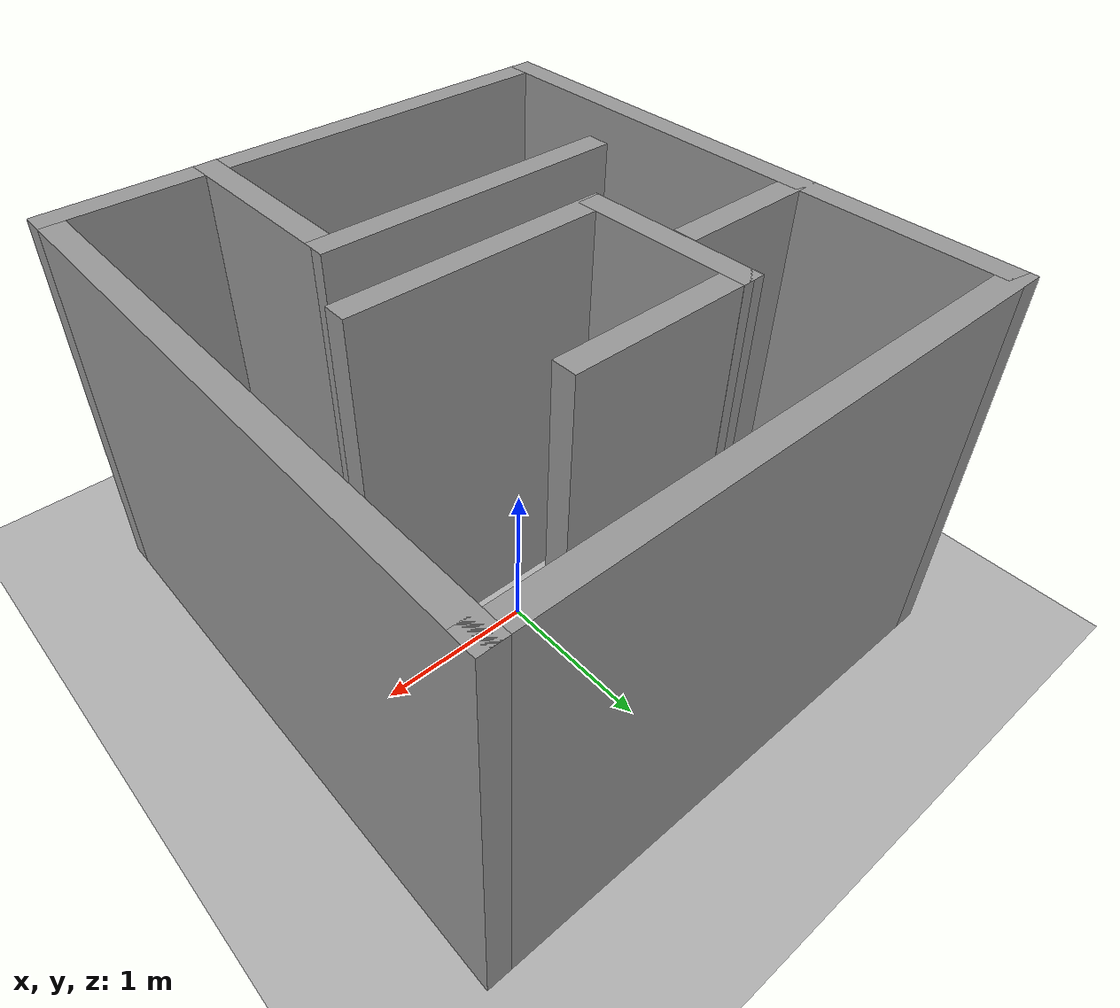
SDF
<sdf version='1.9'>
  <world name='default'>
    <gravity>0 0 -9.8</gravity>
    <magnetic_field>6e-06 2.3e-05 -4.2e-05</magnetic_field>
    <atmosphere type='adiabatic'/>
    <physics type='ode'>
      <max_step_size>0.001</max_step_size>
      <real_time_factor>1</real_time_factor>
      <real_time_update_rate>1000</real_time_update_rate>
    </physics>
    <scene>
      <ambient>0.4 0.4 0.4 1</ambient>
      <background>0.7 0.7 0.7 1</background>
      <shadows>true</shadows>
    </scene>
    <model name='maze'>
      <pose>-0.135324 -0.231144 0 0 -0 0</pose>
      <link name='Wall_0'>
        <collision name='Wall_0_Collision'>
          <geometry>
            <box>
              <size>3.5 0.15 2.5</size>
            </box>
          </geometry>
          <pose>0 0 1.25 0 -0 0</pose>
          <surface>
            <friction>
              <ode/>
            </friction>
            <bounce/>
            <contact/>
          </surface>
        </collision>
        <visual name='Wall_0_Visual'>
          <pose>0 0 1.25 0 -0 0</pose>
          <geometry>
            <box>
              <size>3.5 0.15 2.5</size>
            </box>
          </geometry>
          <material>
            <script>
              <uri>file://media/materials/scripts/gazebo.material</uri>
              <name>Gazebo/Grey</name>
            </script>
            <ambient>1 1 1 1</ambient>
          </material>
          <meta>
            <layer>0</layer>
          </meta>
        </visual>
        <pose>0 1.8011 0 0 -0 0</pose>
        <inertial>
          <pose>0 0 0 0 -0 0</pose>
          <mass>1</mass>
          <inertia>
            <ixx>1</ixx>
            <ixy>0</ixy>
            <ixz>0</ixz>
            <iyy>1</iyy>
            <iyz>0</iyz>
            <izz>1</izz>
          </inertia>
        </inertial>
        <enable_wind>false</enable_wind>
      </link>
      <link name='Wall_1'>
        <collision name='Wall_1_Collision'>
          <geometry>
            <box>
              <size>3.75 0.15 2.5</size>
            </box>
          </geometry>
          <pose>0 0 1.25 0 -0 0</pose>
          <surface>
            <friction>
              <ode/>
            </friction>
            <bounce/>
            <contact/>
          </surface>
        </collision>
        <visual name='Wall_1_Visual'>
          <pose>0 0 1.25 0 -0 0</pose>
          <geometry>
            <box>
              <size>3.75 0.15 2.5</size>
            </box>
          </geometry>
          <material>
            <script>
              <uri>file://media/materials/scripts/gazebo.material</uri>
              <name>Gazebo/Grey</name>
            </script>
            <ambient>1 1 1 1</ambient>
          </material>
          <meta>
            <layer>0</layer>
          </meta>
        </visual>
        <pose>1.675 0.001104 0 0 0 -1.5708</pose>
        <inertial>
          <pose>0 0 0 0 -0 0</pose>
          <mass>1</mass>
          <inertia>
            <ixx>1</ixx>
            <ixy>0</ixy>
            <ixz>0</ixz>
            <iyy>1</iyy>
            <iyz>0</iyz>
            <izz>1</izz>
          </inertia>
        </inertial>
        <enable_wind>false</enable_wind>
      </link>
      <link name='Wall_10'>
        <collision name='Wall_10_Collision'>
          <geometry>
            <box>
              <size>1.12773 0.15 2.5</size>
            </box>
          </geometry>
          <pose>0 0 1.25 0 -0 0</pose>
          <surface>
            <friction>
              <ode/>
            </friction>
            <bounce/>
            <contact/>
          </surface>
        </collision>
        <visual name='Wall_10_Visual'>
          <pose>0 0 1.25 0 -0 0</pose>
          <geometry>
            <box>
              <size>1.12773 0.15 2.5</size>
            </box>
          </geometry>
          <material>
            <script>
              <uri>file://media/materials/scripts/gazebo.material</uri>
              <name>Gazebo/Grey</name>
            </script>
            <ambient>1 1 1 1</ambient>
          </material>
          <meta>
            <layer>0</layer>
          </meta>
        </visual>
        <pose>-0.669321 0.437816 0 0 0 -1.55291</pose>
        <inertial>
          <pose>0 0 0 0 -0 0</pose>
          <mass>1</mass>
          <inertia>
            <ixx>1</ixx>
            <ixy>0</ixy>
            <ixz>0</ixz>
            <iyy>1</iyy>
            <iyz>0</iyz>
            <izz>1</izz>
          </inertia>
        </inertial>
        <enable_wind>false</enable_wind>
      </link>
      <link name='Wall_11'>
        <collision name='Wall_11_Collision'>
          <geometry>
            <box>
              <size>1.75 0.15 2.5</size>
            </box>
          </geometry>
          <pose>0 0 1.25 0 -0 0</pose>
          <surface>
            <friction>
              <ode/>
            </friction>
            <bounce/>
            <contact/>
          </surface>
        </collision>
        <visual name='Wall_11_Visual'>
          <pose>0 0 1.25 0 -0 0</pose>
          <geometry>
            <box>
              <size>1.75 0.15 2.5</size>
            </box>
          </geometry>
          <material>
            <script>
              <uri>file://media/materials/scripts/gazebo.material</uri>
              <name>Gazebo/Grey</name>
            </script>
            <ambient>1 1 1 1</ambient>
          </material>
          <meta>
            <layer>0</layer>
          </meta>
        </visual>
        <pose>0.139424 -0.068459 0 0 -0 0</pose>
        <inertial>
          <pose>0 0 0 0 -0 0</pose>
          <mass>1</mass>
          <inertia>
            <ixx>1</ixx>
            <ixy>0</ixy>
            <ixz>0</ixz>
            <iyy>1</iyy>
            <iyz>0</iyz>
            <izz>1</izz>
          </inertia>
        </inertial>
        <enable_wind>false</enable_wind>
      </link>
      <link name='Wall_13'>
        <collision name='Wall_13_Collision'>
          <geometry>
            <box>
              <size>1.25 0.15 2.5</size>
            </box>
          </geometry>
          <pose>0 0 1.25 0 -0 0</pose>
          <surface>
            <friction>
              <ode/>
            </friction>
            <bounce/>
            <contact/>
          </surface>
        </collision>
        <visual name='Wall_13_Visual'>
          <pose>0 0 1.25 0 -0 0</pose>
          <geometry>
            <box>
              <size>1.25 0.15 2.5</size>
            </box>
          </geometry>
          <material>
            <script>
              <uri>file://media/materials/scripts/gazebo.material</uri>
              <name>Gazebo/Grey</name>
            </script>
            <ambient>1 1 1 1</ambient>
          </material>
          <meta>
            <layer>0</layer>
          </meta>
        </visual>
        <pose>-0.128066 0.926601 0 0 -0 0</pose>
        <inertial>
          <pose>0 0 0 0 -0 0</pose>
          <mass>1</mass>
          <inertia>
            <ixx>1</ixx>
            <ixy>0</ixy>
            <ixz>0</ixz>
            <iyy>1</iyy>
            <iyz>0</iyz>
            <izz>1</izz>
          </inertia>
        </inertial>
        <enable_wind>false</enable_wind>
      </link>
      <link name='Wall_2'>
        <collision name='Wall_2_Collision'>
          <geometry>
            <box>
              <size>3.5 0.15 2.5</size>
            </box>
          </geometry>
          <pose>0 0 1.25 0 -0 0</pose>
          <surface>
            <friction>
              <ode/>
            </friction>
            <bounce/>
            <contact/>
          </surface>
        </collision>
        <visual name='Wall_2_Visual'>
          <pose>0 0 1.25 0 -0 0</pose>
          <geometry>
            <box>
              <size>3.5 0.15 2.5</size>
            </box>
          </geometry>
          <material>
            <script>
              <uri>file://media/materials/scripts/gazebo.material</uri>
              <name>Gazebo/Grey</name>
            </script>
            <ambient>1 1 1 1</ambient>
          </material>
          <meta>
            <layer>0</layer>
          </meta>
        </visual>
        <pose>0 -1.7989 0 0 -0 3.14159</pose>
        <inertial>
          <pose>0 0 0 0 -0 0</pose>
          <mass>1</mass>
          <inertia>
            <ixx>1</ixx>
            <ixy>0</ixy>
            <ixz>0</ixz>
            <iyy>1</iyy>
            <iyz>0</iyz>
            <izz>1</izz>
          </inertia>
        </inertial>
        <enable_wind>false</enable_wind>
      </link>
      <link name='Wall_3'>
        <collision name='Wall_3_Collision'>
          <geometry>
            <box>
              <size>3.75 0.15 2.5</size>
            </box>
          </geometry>
          <pose>0 0 1.25 0 -0 0</pose>
          <surface>
            <friction>
              <ode/>
            </friction>
            <bounce/>
            <contact/>
          </surface>
        </collision>
        <visual name='Wall_3_Visual'>
          <pose>0 0 1.25 0 -0 0</pose>
          <geometry>
            <box>
              <size>3.75 0.15 2.5</size>
            </box>
          </geometry>
          <material>
            <script>
              <uri>file://media/materials/scripts/gazebo.material</uri>
              <name>Gazebo/Grey</name>
            </script>
            <ambient>1 1 1 1</ambient>
          </material>
          <meta>
            <layer>0</layer>
          </meta>
        </visual>
        <pose>-1.675 0.001104 0 0 -0 1.5708</pose>
        <inertial>
          <pose>0 0 0 0 -0 0</pose>
          <mass>1</mass>
          <inertia>
            <ixx>1</ixx>
            <ixy>0</ixy>
            <ixz>0</ixz>
            <iyy>1</iyy>
            <iyz>0</iyz>
            <izz>1</izz>
          </inertia>
        </inertial>
        <enable_wind>false</enable_wind>
      </link>
      <link name='Wall_5'>
        <collision name='Wall_5_Collision'>
          <geometry>
            <box>
              <size>2 0.15 2.5</size>
            </box>
          </geometry>
          <pose>0 0 1.25 0 -0 0</pose>
          <surface>
            <friction>
              <ode/>
            </friction>
            <bounce/>
            <contact/>
          </surface>
        </collision>
        <visual name='Wall_5_Visual'>
          <pose>0 0 1.25 0 -0 0</pose>
          <geometry>
            <box>
              <size>2 0.15 2.5</size>
            </box>
          </geometry>
          <material>
            <script>
              <uri>file://media/materials/scripts/gazebo.material</uri>
              <name>Gazebo/Grey</name>
            </script>
            <ambient>1 1 1 1</ambient>
          </material>
          <meta>
            <layer>0</layer>
          </meta>
        </visual>
        <pose>-0.225298 -0.630015 0 0 -0 0</pose>
        <inertial>
          <pose>0 0 0 0 -0 0</pose>
          <mass>1</mass>
          <inertia>
            <ixx>1</ixx>
            <ixy>0</ixy>
            <ixz>0</ixz>
            <iyy>1</iyy>
            <iyz>0</iyz>
            <izz>1</izz>
          </inertia>
        </inertial>
        <enable_wind>false</enable_wind>
      </link>
      <link name='Wall_6'>
        <collision name='Wall_6_Collision'>
          <geometry>
            <box>
              <size>1.3026 0.15 2.5</size>
            </box>
          </geometry>
          <pose>0 0 1.25 0 -0 0</pose>
          <surface>
            <friction>
              <ode/>
            </friction>
            <bounce/>
            <contact/>
          </surface>
        </collision>
        <visual name='Wall_6_Visual'>
          <pose>0 0 1.25 0 -0 0</pose>
          <geometry>
            <box>
              <size>1.3026 0.15 2.5</size>
            </box>
          </geometry>
          <material>
            <script>
              <uri>file://media/materials/scripts/gazebo.material</uri>
              <name>Gazebo/Grey</name>
            </script>
            <ambient>1 1 1 1</ambient>
          </material>
          <meta>
            <layer>0</layer>
          </meta>
        </visual>
        <pose>0.708447 -1.22374 0 0 0 -1.55562</pose>
        <inertial>
          <pose>0 0 0 0 -0 0</pose>
          <mass>1</mass>
          <inertia>
            <ixx>1</ixx>
            <ixy>0</ixy>
            <ixz>0</ixz>
            <iyy>1</iyy>
            <iyz>0</iyz>
            <izz>1</izz>
          </inertia>
        </inertial>
        <enable_wind>false</enable_wind>
      </link>
      <link name='Wall_8'>
        <collision name='Wall_8_Collision'>
          <geometry>
            <box>
              <size>1 0.15 2.5</size>
            </box>
          </geometry>
          <pose>0 0 1.25 0 -0 0</pose>
          <surface>
            <friction>
              <ode/>
            </friction>
            <bounce/>
            <contact/>
          </surface>
        </collision>
        <visual name='Wall_8_Visual'>
          <pose>0 0 1.25 0 -0 0</pose>
          <geometry>
            <box>
              <size>1 0.15 2.5</size>
            </box>
          </geometry>
          <material>
            <script>
              <uri>file://media/materials/scripts/gazebo.material</uri>
              <name>Gazebo/Grey</name>
            </script>
            <ambient>1 1 1 1</ambient>
          </material>
          <meta>
            <layer>0</layer>
          </meta>
        </visual>
        <pose>-1.25 0.489349 0 0 -0 0</pose>
        <inertial>
          <pose>0 0 0 0 -0 0</pose>
          <mass>1</mass>
          <inertia>
            <ixx>1</ixx>
            <ixy>0</ixy>
            <ixz>0</ixz>
            <iyy>1</iyy>
            <iyz>0</iyz>
            <izz>1</izz>
          </inertia>
        </inertial>
        <enable_wind>false</enable_wind>
      </link>
      <static>true</static>
      <self_collide>false</self_collide>
    </model>
    <model name='ground_plane'>
      <static>true</static>
      <link name='link'>
        <collision name='collision'>
          <geometry>
            <plane>
              <normal>0 0 1</normal>
              <size>100 100</size>
            </plane>
          </geometry>
          <surface>
            <friction>
              <ode>
                <mu>100</mu>
                <mu2>50</mu2>
              </ode>
            </friction>
            <bounce/>
            <contact/>
          </surface>
        </collision>
        <visual name='visual'>
          <cast_shadows>false</cast_shadows>
          <geometry>
            <plane>
              <normal>0 0 1</normal>
              <size>100 100</size>
            </plane>
          </geometry>
          <material>
            <ambient>0.3 0.3 0.3 1</ambient>
            <diffuse>0.7 0.7 0.7 1</diffuse>
            <specular>0.01 0.01 0.01 1</specular>
          </material>
        </visual>
        <pose>0 0 0 0 -0 0</pose>
        <inertial>
          <pose>0 0 0 0 -0 0</pose>
          <mass>1</mass>
          <inertia>
            <ixx>1</ixx>
            <ixy>0</ixy>
            <ixz>0</ixz>
            <iyy>1</iyy>
            <iyz>0</iyz>
            <izz>1</izz>
          </inertia>
        </inertial>
        <enable_wind>false</enable_wind>
      </link>
      <pose>-5.09885 -8.49238 0 0 -0 0</pose>
      <self_collide>false</self_collide>
    </model>
    <light name='sun' type='directional'>
      <pose>8.41471 -4.72127 10 0 -0 0</pose>
      <cast_shadows>true</cast_shadows>
      <intensity>1</intensity>
      <direction>-0.5 0.1 -0.9</direction>
      <diffuse>0.8 0.8 0.8 1</diffuse>
      <specular>0.2 0.2 0.2 1</specular>
      <attenuation>
        <range>1000</range>
        <linear>0.01</linear>
        <constant>0.90000000000000002</constant>
        <quadratic>0.001</quadratic>
      </attenuation>
      <spot>
        <inner_angle>0</inner_angle>
        <outer_angle>0</outer_angle>
        <falloff>0</falloff>
      </spot>
    </light>
  </world>
</sdf>
